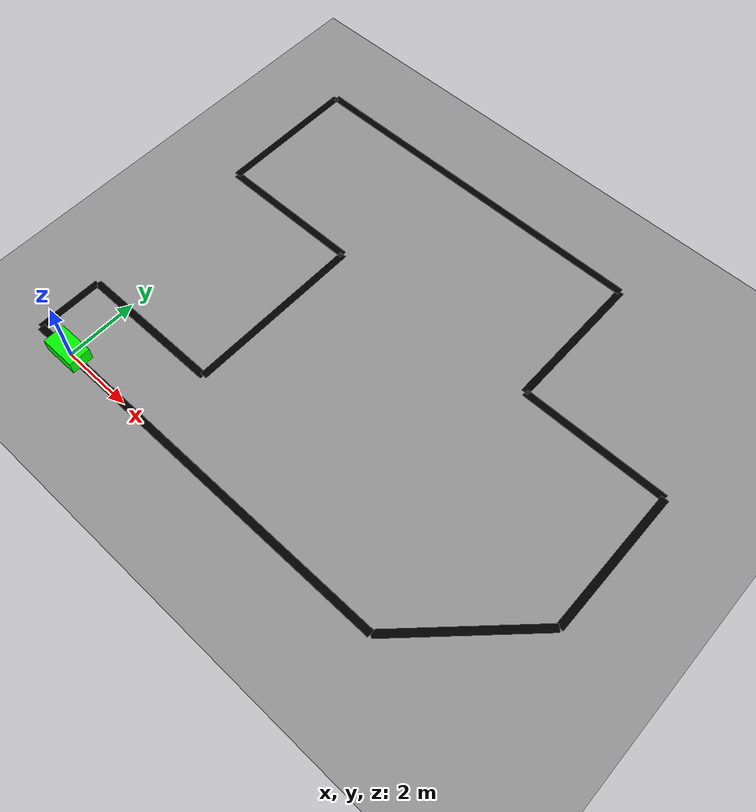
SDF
<?xml version="1.0" ?>
<sdf version="1.8">
  <world name="line_following_world">
    <physics name="1ms" type="ignored">
      <max_step_size>0.001</max_step_size>
      <real_time_factor>1.0</real_time_factor>
    </physics>

    <!-- Gazebo Sim Systems Plugins -->
    <plugin name="gz::sim::systems::Physics" filename="gz-sim-physics-system"/>
    <plugin name="gz::sim::systems::UserCommands" filename="gz-sim-user-commands-system"/>
    <plugin name="gz::sim::systems::SceneBroadcaster" filename="gz-sim-scene-broadcaster-system"/>
    <plugin name="gz::sim::systems::Sensors" filename="gz-sim-sensors-system">
      <render_engine>ogre2</render_engine>
    </plugin>

    <!-- Environmental Illumination -->
    <light type="directional" name="sun">
      <cast_shadows>true</cast_shadows>
      <pose>0 0 10 0 0 0</pose>
      <diffuse>0.8 0.8 0.8 1</diffuse>
      <specular>0.2 0.2 0.2 1</specular>
    </light>

    <!-- Ground Plane Surface -->
    <model name="ground_plane">
      <static>true</static>
      <link name="link">
        <collision name="collision">
          <geometry>
            <plane>
              <normal>0 0 1</normal>
              <size>100 100</size>
            </plane>
          </geometry>
        </collision>
        <visual name="visual">
          <geometry>
            <plane>
              <normal>0 0 1</normal>
              <size>100 100</size>
            </plane>
          </geometry>
          <material>
            <ambient>0.6 0.6 0.6 1</ambient>
            <diffuse>0.6 0.6 0.6 1</diffuse>
          </material>
        </visual>
      </link>
    </model>

    <!-- Multi-Turn Closed Loop Track (Fixed Geometry & Continuous) -->
    <model name="loop_track">
      <static>true</static>

      <!-- Segment 1: Main Start Straight -->
      <link name="seg_1">
        <pose>5.0000 0.0000 0.005 0 0 0.0000</pose>
        <visual name="v1"><geometry><box><size>10.0000 0.2 0.001</size></box></geometry>
        <material><ambient>0 0 0 1</ambient><diffuse>0 0 0 1</diffuse></material></visual>
      </link>

      <!-- Segment 2: Soft 45-degree Left Turn (Part A) -->
      <link name="seg_2">
        <pose>11.4142 1.4142 0.005 0 0 0.7854</pose>
        <visual name="v2"><geometry><box><size>4.0000 0.2 0.001</size></box></geometry>
        <material><ambient>0 0 0 1</ambient><diffuse>0 0 0 1</diffuse></material></visual>
      </link>

      <!-- Segment 3: Straight Section after 45 -->
      <link name="seg_3">
        <pose>12.8284 4.8284 0.005 0 0 1.5708</pose>
        <visual name="v3"><geometry><box><size>4.0000 0.2 0.001</size></box></geometry>
        <material><ambient>0 0 0 1</ambient><diffuse>0 0 0 1</diffuse></material></visual>
      </link>

      <!-- Segment 4: Sharp 90-degree Left Turn -->
      <link name="seg_4">
        <pose>10.8284 6.8284 0.005 0 0 3.1416</pose>
        <visual name="v4"><geometry><box><size>4.0000 0.2 0.001</size></box></geometry>
        <material><ambient>0 0 0 1</ambient><diffuse>0 0 0 1</diffuse></material></visual>
      </link>

      <!-- Segment 5: Back-S-Curve Right Turn -->
      <link name="seg_5">
        <pose>8.8284 8.8284 0.005 0 0 1.5708</pose>
        <visual name="v5"><geometry><box><size>4.0000 0.2 0.001</size></box></geometry>
        <material><ambient>0 0 0 1</ambient><diffuse>0 0 0 1</diffuse></material></visual>
      </link>

      <!-- Segment 6: Long Upper Straight -->
      <link name="seg_6">
        <pose>3.8284 10.8284 0.005 0 0 3.1416</pose>
        <visual name="v6"><geometry><box><size>10.0000 0.2 0.001</size></box></geometry>
        <material><ambient>0 0 0 1</ambient><diffuse>0 0 0 1</diffuse></material></visual>
      </link>

      <!-- Segment 7: Left Turn Downwards -->
      <link name="seg_7">
        <pose>-1.1716 8.8284 0.005 0 0 -1.5708</pose>
        <visual name="v7"><geometry><box><size>4.0000 0.2 0.001</size></box></geometry>
        <material><ambient>0 0 0 1</ambient><diffuse>0 0 0 1</diffuse></material></visual>
      </link>

      <!-- Segment 8: Inner Loop Chicane Left -->
      <link name="seg_8">
        <pose>0.8284 6.8284 0.005 0 0 0.0000</pose>
        <visual name="v8"><geometry><box><size>4.0000 0.2 0.001</size></box></geometry>
        <material><ambient>0 0 0 1</ambient><diffuse>0 0 0 1</diffuse></material></visual>
      </link>

      <!-- Segment 9: Inner Loop Chicane Right -->
      <link name="seg_9">
        <pose>2.8284 4.3284 0.005 0 0 -1.5708</pose>
        <visual name="v9"><geometry><box><size>5.0000 0.2 0.001</size></box></geometry>
        <material><ambient>0 0 0 1</ambient><diffuse>0 0 0 1</diffuse></material></visual>
      </link>

      <!-- Segment 10: Lower Bottom Corner Approach -->
      <link name="seg_10">
        <pose>0.8284 1.8284 0.005 0 0 3.1416</pose>
        <visual name="v10"><geometry><box><size>4.0000 0.2 0.001</size></box></geometry>
        <material><ambient>0 0 0 1</ambient><diffuse>0 0 0 1</diffuse></material></visual>
      </link>

      <!-- Segment 11: Final Return Corner Link -->
      <link name="seg_11">
        <pose>-1.1716 0.9142 0.005 0 0 -1.5708</pose>
        <visual name="v11"><geometry><box><size>1.8284 0.2 0.001</size></box></geometry>
        <material><ambient>0 0 0 1</ambient><diffuse>0 0 0 1</diffuse></material></visual>
      </link>

      <!-- Segment 12: Loop Closing Segment -->
      <link name="seg_12">
        <pose>-0.5858 0.0000 0.005 0 0 0.0000</pose>
        <visual name="v12"><geometry><box><size>1.1716 0.2 0.001</size></box></geometry>
        <material><ambient>0 0 0 1</ambient><diffuse>0 0 0 1</diffuse></material></visual>
      </link>
    </model>

    <!-- PID Line Following Vehicle -->
    <model name="pid_vehicle">
      <pose>0 0 0.25 0 0 0</pose>
      <link name="chassis">
        <inertial>
          <mass>150.0</mass>
          <inertia>
            <ixx>5.0</ixx><ixy>0.0</ixy><ixz>0.0</ixz>
            <iyy>12.0</iyy><iyz>0.0</iyz>
            <izz>15.0</izz>
          </inertia>
        </inertial>
        <collision name="collision">
          <geometry><box><size>1.0 0.6 0.4</size></box></geometry>
        </collision>
        <visual name="visual">
          <geometry><box><size>1.0 0.6 0.4</size></box></geometry>
          <material>
            <ambient>0 1 0 1</ambient>
            <diffuse>0 1 0 1</diffuse>
          </material>
        </visual>

        <!-- Front Mounted Tracking Camera Sensor (Optimized FOV) -->
        <sensor name="front_camera" type="camera">
          <pose>0.5 0 0.4 0 0.4363 0</pose> <!-- Raised height, pitched down ~25 deg -->
          <topic>front_camera</topic>
          <update_rate>60</update_rate> <!-- Increased frequency for fast motion -->
          <camera>
            <horizontal_fov>2.0944</horizontal_fov> <!-- Widened FOV to 75 degrees -->
            <image>
              <width>640</width>
              <height>480</height>
              <format>R8G8B8</format>
            </image>
            <clip>
              <near>0.05</near> <!-- Closer clipping boundary to capture ground near bumper -->
              <far>100</far>
            </clip>
          </camera>
        </sensor>
      </link>

      <!-- Velocity Control Plugin Setup -->
      <plugin filename="gz-sim-velocity-control-system" name="gz::sim::systems::VelocityControl">
        <topic>/cmd_vel</topic>
      </plugin>
    </model>
  </world>
</sdf>
